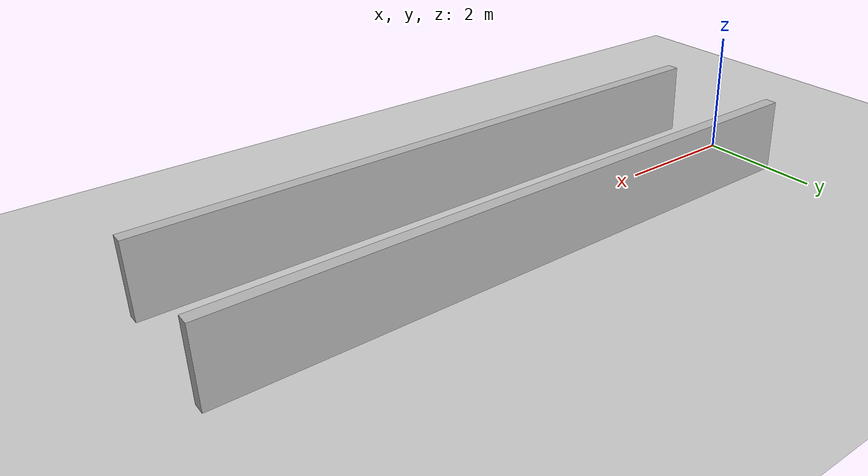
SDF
<?xml version="1.0"?>
<sdf version="1.6">
  <world name="v2-cal-corridor-offset-s4304">
    <gravity>0 0 -9.81</gravity>
    <physics name="v2_deterministic" type="ode">
      <max_step_size>0.002</max_step_size>
      <real_time_update_rate>500</real_time_update_rate>
    </physics>
    <include>
      <uri>model://sun</uri>
    </include>
    <include>
      <uri>model://ground_plane</uri>
    </include>
    <model name="cal-corridor-left">
      <static>true</static>
      <pose>5.004564715 1.112939932 0.600000000 0 0 0.002550583</pose>
      <link name="link">
        <collision name="collision">
          <geometry>
            <box>
              <size>10.000000 0.200000 1.200000</size>
            </box>
          </geometry>
        </collision>
        <visual name="visual">
          <geometry>
            <box>
              <size>10.000000 0.200000 1.200000</size>
            </box>
          </geometry>
        </visual>
      </link>
    </model>
    <model name="cal-corridor-right">
      <static>true</static>
      <pose>4.994273603 -1.088100828 0.600000000 0 0 0.003175082</pose>
      <link name="link">
        <collision name="collision">
          <geometry>
            <box>
              <size>10.000000 0.200000 1.200000</size>
            </box>
          </geometry>
        </collision>
        <visual name="visual">
          <geometry>
            <box>
              <size>10.000000 0.200000 1.200000</size>
            </box>
          </geometry>
        </visual>
      </link>
    </model>
  </world>
</sdf>
